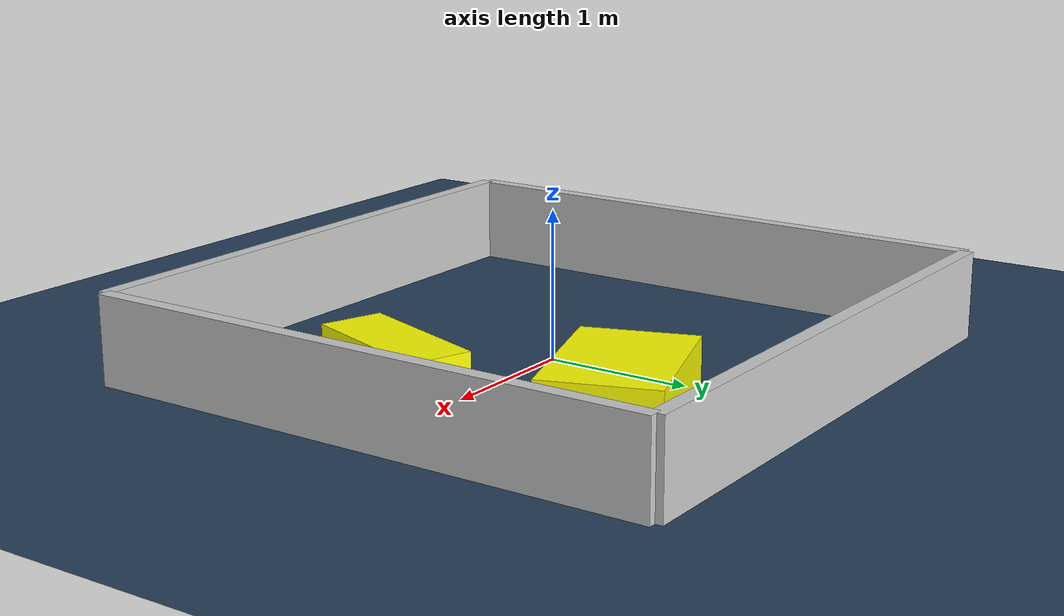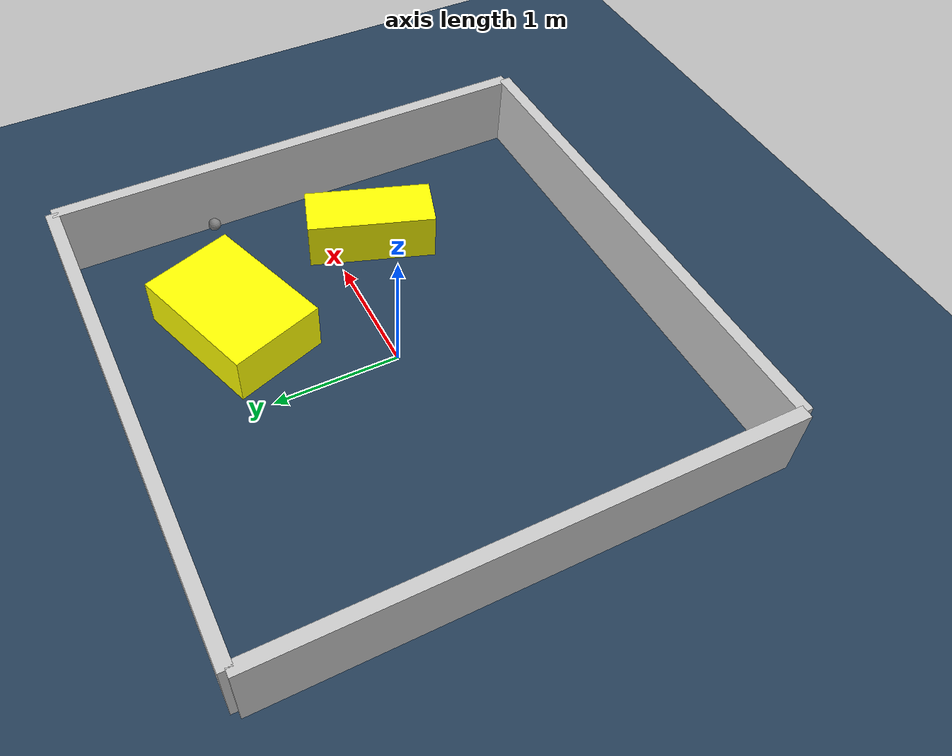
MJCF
<?xml version="1.0" ?>
<mujoco model="generated_environment">
  <option timestep="0.01" integrator="RK4" cone="elliptic"/>
  <default>
    <geom density="1"/>
  </default>
  <asset>
    <texture builtin="gradient" height="3072" rgb1="0.3 0.5 0.7" rgb2="0 0 0" type="skybox" width="512"/>
    <texture builtin="checker" height="300" mark="edge" markrgb="0.8 0.8 0.8" name="groundplane" rgb1="0.2 0.3 0.4" rgb2="0.1 0.2 0.3" type="2d" width="300"/>
    <material name="groundplane" reflectance="0.2" texrepeat="5 5" texture="groundplane" texuniform="true"/>
    <material name="robot" rgba="0.0 1.0 0.0 1"/>
  </asset>
  <worldbody>
    <light dir="0 0 -1" directional="true" pos="0 0 1.5"/>
    <geom condim="4" friction="1.0 0.005 0.001" material="groundplane" name="floor" size="0 0 0.05" type="plane"/>
    <body name="walls">
      <geom name="wall_1" condim="4" pos="-2.0 0.0 0.3" rgba="0.800000011920929 0.800000011920929 0.800000011920929 1.0" size="0.05 2.0 0.3" type="box"/>
      <geom name="wall_2" condim="4" pos="2.0 0.0 0.3" rgba="0.800000011920929 0.800000011920929 0.800000011920929 1.0" size="0.05 2.0 0.3" type="box"/>
      <geom name="wall_3" condim="4" pos="0.0 -2.0 0.3" rgba="0.800000011920929 0.800000011920929 0.800000011920929 1.0" size="2.0 0.05 0.3" type="box"/>
      <geom name="wall_4" condim="4" pos="0.0 2.0 0.3" rgba="0.800000011920929 0.800000011920929 0.800000011920929 1.0" size="2.0 0.05 0.3" type="box"/>
    </body>
    <body name="robot">
      <joint name="joint_x" type="slide" pos="0 0 0" axis="1 0 0"/>
      <joint name="joint_y" type="slide" pos="0 0 0" axis="0 1 0"/>
      <geom name="robot" type="sphere" pos="1.7716096408511866 0.8150112928988023 0.2" size="0.05" mass="5." friction="1.0 0.005 0.0001" condim="4"/>
      <site name="sensor_ball"/>
    </body>
    <body name="obstacle_1_movable">
      <geom name="obstacle_1_movable" condim="4" pos="0.7764330963543378 1.0069324565317752 0.2" euler="0 0 289.05605050954205" friction="1.0 0.005 0.001" rgba="1 1 0 1" size="0.3831578946982047 0.5472177665711235 0.2" type="box" mass="0.1"/>
      <joint type="free"/>
    </body>
    <body name="obstacle_2_movable">
      <geom name="obstacle_2_movable" condim="4" pos="1.2199466313272531 -0.3318769469990661 0.2" euler="0 0 161.25204376599694" friction="1.0 0.005 0.001" rgba="1 1 0 1" size="0.2123193153952599 0.5117822856366478 0.2" type="box" mass="0.1"/>
      <joint type="free"/>
    </body>
  </worldbody>
  <actuator>
    <motor name="actuator_x" joint="joint_x" gear="1" ctrlrange="-1 1"/>
    <motor name="actuator_y" joint="joint_y" gear="1" ctrlrange="-1 1"/>
  </actuator>
</mujoco>
